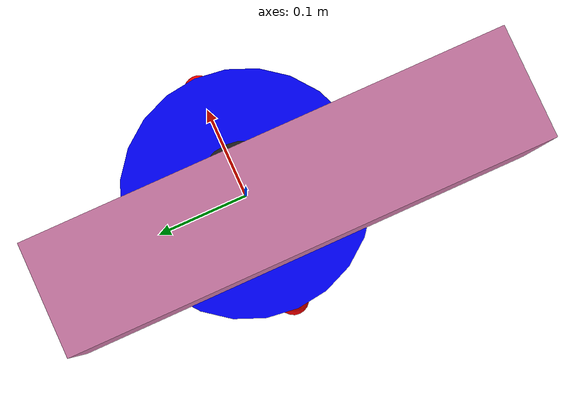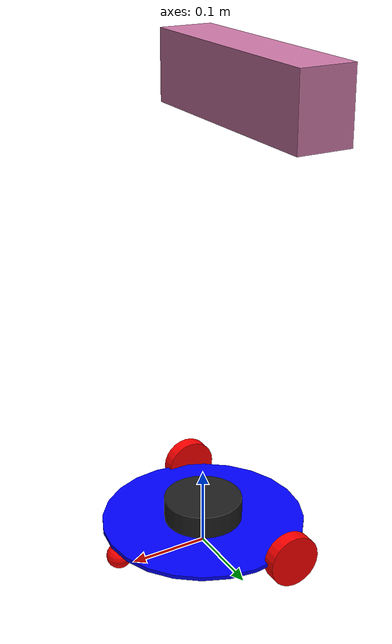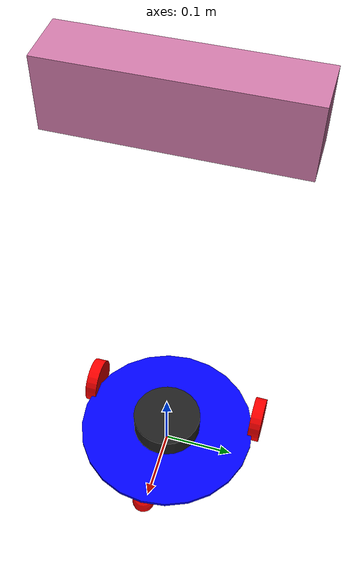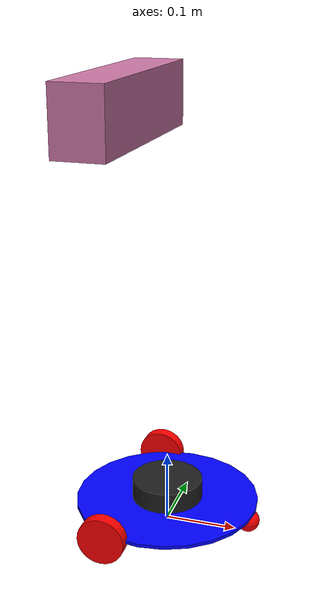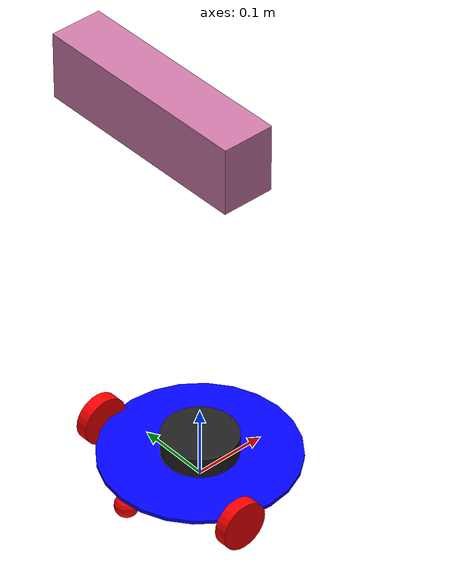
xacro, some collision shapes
<?xml version="1.0"?>
<robot name="noob_robot" xmlns:xacro="http://ros.org/wiki/xacro">

    <!--Kinect Offset-->
    <xacro:property name="kinect_offset_x" value="-0.06" />
    <xacro:property name="kinect_offset_y" value="0" />
    <xacro:property name="kinect_offset_z" value="0.555" />
    <!--Lidar Offset-->
    <xacro:property name="rplidar_offset_x" value="0" />
    <xacro:property name="rplidar_offset_y" value="0" />
    <xacro:property name="rplidar_offset_z" value="0.04" />

    <xacro:include filename="$(find noob_robot_description)/urdf/noob_robot_chassis.urdf.xacro" />
    <xacro:include filename="$(find noob_robot_description)/urdf/kinect.xacro" />
    <xacro:include filename="$(find noob_robot_description)/urdf/rplidar.xacro" />
    <!--Declare the xacro in the above file-->
    <xacro:noob_robot_body/>

    <!--Laser-->
	<joint name="rplidar_joint" type="fixed">
		<origin xyz="${rplidar_offset_x} ${rplidar_offset_y} ${rplidar_offset_z}" rpy="0 0 0" />
		<parent link="base_footprint"/>
		<child link="laser_link"/>
	</joint>
    <!--Kinect-->
    <joint name="kinect_frame_joint" type="fixed">
        <origin xyz="${kinect_offset_x} ${kinect_offset_y} ${kinect_offset_z}" rpy="0 0 0" />
        <parent link="base_link"/>
        <child link="camera_link"/>
    </joint>
    <!--Declare the xacro in the above file-->
    <xacro:kinect_camera prefix="camera"/>
    <xacro:rplidar prefix="laser"/>
</robot>

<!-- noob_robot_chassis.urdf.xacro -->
<robot name="noob_robot" xmlns:xacro="http://www.ros.org/wiki/xacro">

    <!-- Defining the colors used in this robot -->
    <material name="Black">
        <color rgba="0 0 0 1"/>
    </material>

    <material name="White">
        <color rgba="1 1 1 1"/>
    </material>

    <material name="Blue">
        <color rgba="0 0 1 1"/>
    </material>

    <material name="Red">
        <color rgba="1 0 0 1"/>
    </material>

    <!-- PROPERTY LIST -->
    <!--All units in m-kg-s-radians unit system -->
    <xacro:property name="M_PI" value="3.1415926535897931" />

    <!-- Main body length, width, height and mass -->
    <xacro:property name="base_mass"        value="0.5" />
    <xacro:property name="base_link_radius" value="0.13"/>
    <xacro:property name="base_link_length" value="0.005"/>

    <xacro:property name="motor_x" value="-0.05"/>

    <!-- Caster radius and mass -->
    <xacro:property name="caster_radius"          value="0.016" />
    <xacro:property name="caster_mass"            value="0.01" />
    <xacro:property name="caster_joint_origin_x"  value="-0.12" />

    <!-- Wheel radius, height and mass -->
    <xacro:property name="wheel_radius" value="0.033" />
    <xacro:property name="wheel_height" value="0.017" />
    <xacro:property name="wheel_mass"   value="0.1" />

    <!-- plate height and mass -->
    <xacro:property name="plate_mass"   value="0.05"/>
    <xacro:property name="plate_height" value="0.07"/>
    <xacro:property name="standoff_x"   value="0.12"/>
    <xacro:property name="standoff_y"   value="0.10"/>

    <!-- Macro for inertia matrix -->
    <xacro:macro name="sphere_inertial_matrix" params="m r">
        <inertial>
            <mass value="${m}" />
            <inertia ixx="${2*m*r*r/5}" ixy="0" ixz="0"
                iyy="${2*m*r*r/5}" iyz="0"
                izz="${2*m*r*r/5}" />
        </inertial>
    </xacro:macro>

    <xacro:macro name="cylinder_inertial_matrix" params="m r h">
        <inertial>
            <mass value="${m}" />
            <inertia ixx="${m*(3*r*r+h*h)/12}" ixy = "0" ixz = "0"
                iyy="${m*(3*r*r+h*h)/12}" iyz = "0"
                izz="${m*r*r/2}" />
        </inertial>
    </xacro:macro>

    <xacro:macro name="box_inertial_matrix" params="m w h d">
        <inertial>
            <mass value="${m}" />
            <inertia ixx="${m*(h*h+d*d)/12}" ixy = "0" ixz = "0"
                iyy="${m*(w*w+d*d)/12}" iyz = "0"
                izz="${m*(w*w+h*h)/12}" />
        </inertial>
    </xacro:macro>

    <!-- Macro for wheel joint -->
    <xacro:macro name="wheel" params="lr translateY">-->
        <!-- lr: left, right -->
        <link name="wheel_${lr}_link">
            <visual>
                <origin xyz="0 0 0" rpy="${M_PI/2} 0 0" />
                <geometry>
                    <cylinder length="${wheel_height}" radius="${wheel_radius}" />
                </geometry>
                <material name="Red" />
            </visual>
            <collision>
                <geometry>
                    <cylinder length="${wheel_height}" radius="${wheel_radius}" />
                </geometry>
                <origin xyz="0 0 0" rpy="${M_PI/2} 0 0" />
            </collision>
            <xacro:cylinder_inertial_matrix  m="${wheel_mass}" r="${wheel_radius}" h="${wheel_height}" />
        </link>

        <gazebo reference="wheel_${lr}_link">
            <material>Gazebo/Blue</material>
        </gazebo>

        <joint name="base_to_wheel_${lr}_joint" type="continuous">
            <parent link="base_footprint"/>
            <child link="wheel_${lr}_link"/>
            <origin xyz="${motor_x} ${translateY * base_link_radius} ${wheel_radius}" rpy="0 0 0" />
            <axis xyz="0 1 0" rpy="0 0 0" />
        </joint>

        <!-- Transmission is important to link the joints and the controller -->
        <transmission name="wheel_${lr}_joint_trans">
            <type>transmission_interface/SimpleTransmission</type>
            <joint name="base_to_wheel_${lr}_joint" />
            <actuator name="wheel_${lr}_joint_motor">
                <hardwareInterface>VelocityJointInterface</hardwareInterface>
                <mechanicalReduction>1</mechanicalReduction>
            </actuator>
        </transmission>
    </xacro:macro>

    <!-- Macro for caster joint -->
    <xacro:macro name="caster" params="fb translateX">
        <!-- fb: front, back -->
        <link name="${fb}_caster_link">
            <visual>
                <origin xyz="0 0 0 " rpy="0 0 0" />
                <geometry>
                    <sphere radius="${caster_radius}" />
                </geometry>
                <material name="Red" />
            </visual>
            <collision>
                <geometry>
                    <sphere radius="${caster_radius}" />
                </geometry>
                <origin xyz="0 0 0 " rpy="0 0 0" />
            </collision>
            <xacro:sphere_inertial_matrix  m="${caster_mass}" r="${caster_radius}" />
        </link>

        <gazebo reference="${fb}_caster_link">
            <material>Gazebo/Red</material>
        </gazebo>

        <joint name="base_to_${fb}_caster_joint" type="fixed">
            <parent link="base_link"/>
            <child link="${fb}_caster_link"/>
            <origin xyz="${translateX*caster_joint_origin_x} 0 ${-caster_radius}" rpy="0 0 0"/>
        </joint>
    </xacro:macro>

    <!-- BASE-FOOTPRINT -->
    <!-- base_footprint is a fictitious link(frame) that is on the ground right below base_link origin -->
    <xacro:macro name="noob_robot_body">
        <link name="base_footprint">
            <visual>
                <origin xyz="0 0 0" rpy="0 0 0" />
                <geometry>
                    <box size="0.001 0.001 0.001" />
                </geometry>
            </visual>
        </link>

        <joint name="base_footprint_joint" type="fixed">
            <origin xyz="0 0 ${wheel_radius}" rpy="0 0 0" />
            <parent link="base_footprint"/>
            <child link="base_link" />
        </joint>

        <!-- BASE-LINK -->
        <!--Actual body/chassis of the robot-->
        <link name="base_link">
            <xacro:cylinder_inertial_matrix  m="${base_mass}" r="${base_link_radius}" h="${base_link_length}" />
            <visual>
                <origin xyz=" 0 0 0" rpy="0 0 0" />
                <geometry>
                    <cylinder length="${base_link_length}" radius="${base_link_radius}"/>
                </geometry>
                <material name="Blue" />
            </visual>

            <collision>
                <origin xyz="0 0 0" rpy="0 0 0" />
                <geometry>
                    <cylinder length="${base_link_length}" radius="${base_link_radius}"/>
                </geometry>
            </collision>
        </link>
        <gazebo reference="base_link">
            <material>Gazebo/Blue</material>
        </gazebo>

        <!-- Casters Definitions-->
        <xacro:caster fb="front"  translateX="-1" />
        <xacro:caster fb="back"  translateX="1" />

        <!-- Wheel Definitions -->
        <xacro:wheel lr="right"  translateY="-1" />
        <xacro:wheel lr="left"  translateY="1" />

        <!-- controller -->
        <gazebo>
            <plugin name="differential_drive_controller" filename="libgazebo_ros_diff_drive.so">
                <rosDebugLevel>Debug</rosDebugLevel>
                <publishWheelTF>true</publishWheelTF>
                <robotNamespace>/</robotNamespace>
                <publishTf>1</publishTf>
                <publishWheelJointState>true</publishWheelJointState>
                <alwaysOn>true</alwaysOn>
                <updateRate>100.0</updateRate>
                <legacyMode>true</legacyMode>
                <leftJoint>base_to_wheel_left_joint</leftJoint>
                <rightJoint>base_to_wheel_right_joint</rightJoint>
                <wheelSeparation>${base_link_radius*2}</wheelSeparation>
                <wheelDiameter>${2*wheel_radius}</wheelDiameter>
                <broadcastTF>1</broadcastTF>
                <wheelTorque>30</wheelTorque>
                <wheelAcceleration>1.8</wheelAcceleration>
                <commandTopic>cmd_vel</commandTopic>
                <odometryFrame>odom</odometryFrame>
                <odometryTopic>odom</odometryTopic>
                <robotBaseFrame>base_footprint</robotBaseFrame>
            </plugin>
        </gazebo>

    </xacro:macro>
</robot>

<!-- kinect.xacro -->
<robot xmlns:xacro="http://www.ros.org/wiki/xacro" name="kinect_camera">

    <xacro:macro name="kinect_camera" params="prefix:=camera">
        <link name="${prefix}_link">
            <origin xyz="0 0 0" rpy="0 0 0"/>
            <visual>
                <origin xyz="0 0 0" rpy="0 0 ${M_PI/2}"/>
                <geometry>
                    <mesh filename="package://noob_robot_description/meshes/kinect.dae" />
                </geometry>
            </visual>
            <collision>
                <geometry>
                    <box size="0.07 0.3 0.09"/>
                </geometry>
            </collision>
        </link>

        <joint name="${prefix}_optical_joint" type="fixed">
            <origin xyz="0 0 0" rpy="-1.5708 0 -1.5708"/>
            <parent link="${prefix}_link"/>
            <child link="${prefix}_frame_optical"/>
        </joint>

        <link name="${prefix}_frame_optical"/>

        <!--Gazebo Plugin-->
        <gazebo reference="${prefix}_link">
            <sensor type="depth" name="${prefix}">
                <always_on>true</always_on>
                <update_rate>20.0</update_rate>
                <camera>
                    <horizontal_fov>${60.0*M_PI/180.0}</horizontal_fov>
                    <image>
                        <format>R8G8B8</format>
                        <width>640</width>
                        <height>480</height>
                    </image>
                    <clip>
                        <near>0.05</near>
                        <far>8.0</far>
                    </clip>
                </camera>
                <plugin name="kinect_${prefix}_controller" filename="libgazebo_ros_openni_kinect.so">
                    <cameraName>${prefix}</cameraName>
                    <alwaysOn>true</alwaysOn>
                    <updateRate>10</updateRate>
                    <imageTopicName>rgb/image_raw</imageTopicName>
                    <depthImageTopicName>depth/image_raw</depthImageTopicName>
                    <pointCloudTopicName>depth/points</pointCloudTopicName>
                    <cameraInfoTopicName>rgb/camera_info</cameraInfoTopicName>
                    <depthImageCameraInfoTopicName>depth/camera_info</depthImageCameraInfoTopicName>
                    <frameName>${prefix}_frame_optical</frameName>
                    <baseline>0.1</baseline>
                    <distortion_k1>0.0</distortion_k1>
                    <distortion_k2>0.0</distortion_k2>
                    <distortion_k3>0.0</distortion_k3>
                    <distortion_t1>0.0</distortion_t1>
                    <distortion_t2>0.0</distortion_t2>
                    <pointCloudCutoff>0.4</pointCloudCutoff>
                </plugin>
            </sensor>
        </gazebo>
    </xacro:macro>

</robot>

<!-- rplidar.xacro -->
<robot xmlns:xacro="http://www.ros.org/wiki/xacro" name="laser">

    <xacro:macro name="rplidar" params="prefix:=laser">
        <!-- Create laser reference frame -->
        <link name="${prefix}_link">
            <inertial>
                <mass value="0.1" />
                <origin xyz="0 0 0" />
                <inertia ixx="0.01" ixy="0.0" ixz="0.0"
                         iyy="0.01" iyz="0.0"
                         izz="0.01" />
            </inertial>

            <visual>
                <origin xyz=" 0 0 0 " rpy="0 0 0" />
                <geometry>
                    <cylinder length="0.05" radius="0.05"/>
                </geometry>
                <material name="black"/>
            </visual>

            <collision>
                <origin xyz="0.0 0.0 0.0" rpy="0 0 0" />
                <geometry>
                    <cylinder length="0.06" radius="0.05"/>
                </geometry>
            </collision>
        </link>
        <gazebo reference="${prefix}_link">
            <material>Gazebo/Black</material>
        </gazebo>

        <gazebo reference="${prefix}_link">
            <sensor type="ray" name="rplidar">
                <pose>0 0 0 0 0 0</pose>
                <visualize>true</visualize>
                <update_rate>5.5</update_rate>
                <ray>
                    <scan>
                      <horizontal>
                        <samples>360</samples>
                        <resolution>1</resolution>
                        <min_angle>-2.35619449</min_angle>
                        <max_angle>2.35619449</max_angle>
                      </horizontal>
                    </scan>
                    <range>
                      <min>0.10</min>
                      <max>6.0</max>
                      <resolution>0.01</resolution>
                    </range>
                    <noise>
                      <type>gaussian</type>
                      <mean>0.0</mean>
                      <stddev>0.01</stddev>
                    </noise>
                </ray>
                <plugin name="gazebo_rplidar" filename="libgazebo_ros_laser.so">
                    <topicName>/scan</topicName>
                    <frameName>laser_link</frameName>
                </plugin>
            </sensor>
        </gazebo>

    </xacro:macro>
</robot>
